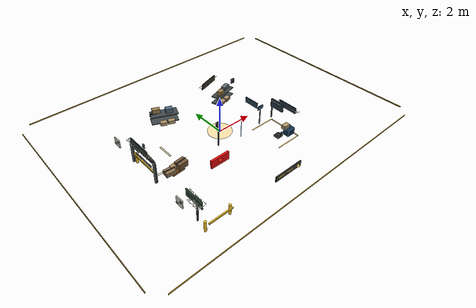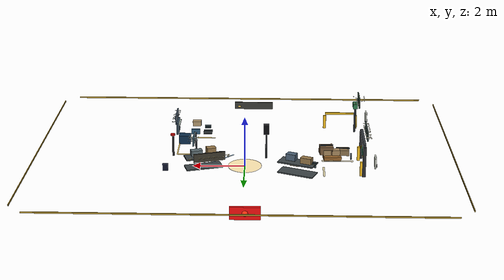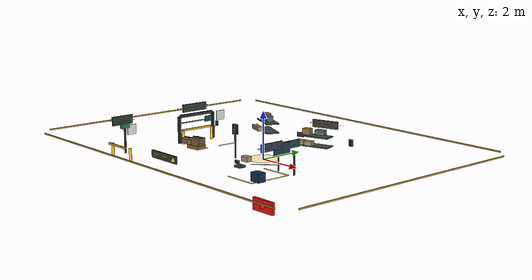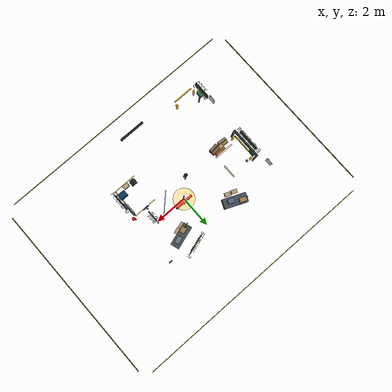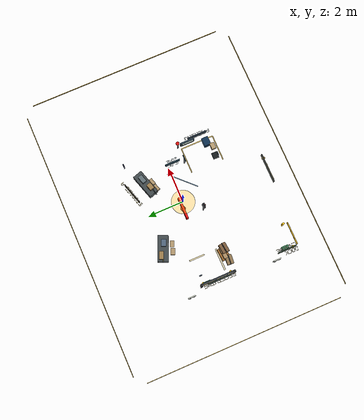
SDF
<sdf version="1.9">
 <world name="factory_patrol">
  <model name="showcase_pallets_and_totes">
   <static>true</static>
   <link name="link">
    <visual name="receiving_pallet">
     <pose>-3.42 -0.86 0.08 0 0 0.08</pose>
     <geometry><box><size>0.68 0.46 0.16</size></box></geometry>
     <material><diffuse>0.58 0.38 0.16 1</diffuse></material>
    </visual>
    <visual name="receiving_tote_1">
     <pose>-3.56 -0.86 0.30 0 0 0.08</pose>
     <geometry><box><size>0.30 0.22 0.22</size></box></geometry>
     <material><diffuse>0.64 0.52 0.36 1</diffuse></material>
    </visual>
    <visual name="receiving_tote_2">
     <pose>-3.22 -0.83 0.30 0 0 0.08</pose>
     <geometry><box><size>0.30 0.22 0.22</size></box></geometry>
     <material><diffuse>0.64 0.52 0.36 1</diffuse></material>
    </visual>
    <visual name="storage_a_tote_1">
     <pose>1.12 1.06 0.78 0 0 0.30</pose>
     <geometry><box><size>0.34 0.22 0.18</size></box></geometry>
     <material><diffuse>0.66 0.56 0.40 1</diffuse></material>
    </visual>
    <visual name="storage_a_tote_2">
     <pose>1.50 1.15 0.78 0 0 0.30</pose>
     <geometry><box><size>0.34 0.22 0.18</size></box></geometry>
     <material><diffuse>0.66 0.56 0.40 1</diffuse></material>
    </visual>
    <visual name="storage_b_tote_1">
     <pose>-2.32 1.58 0.78 0 0 -0.40</pose>
     <geometry><box><size>0.34 0.22 0.18</size></box></geometry>
     <material><diffuse>0.66 0.56 0.40 1</diffuse></material>
    </visual>
    <visual name="storage_b_tote_2">
     <pose>-1.94 1.46 0.78 0 0 -0.40</pose>
     <geometry><box><size>0.34 0.22 0.18</size></box></geometry>
     <material><diffuse>0.66 0.56 0.40 1</diffuse></material>
    </visual>
    <visual name="packing_bin">
     <pose>2.52 -2.45 0.18 0 0 0</pose>
     <geometry><box><size>0.46 0.36 0.36</size></box></geometry>
     <material><diffuse>0.05 0.18 0.30 1</diffuse></material>
    </visual>
    <visual name="packing_ready_tote">
     <pose>2.02 -2.60 0.82 0 0 0</pose>
     <geometry><box><size>0.34 0.24 0.20</size></box></geometry>
     <material><diffuse>0.68 0.58 0.42 1</diffuse></material>
    </visual>
   </link>
  </model>
  <model name="showcase_environment_polish">
   <static>true</static>
   <link name="link">
    <visual name="north_wall_safety_stripe">
     <pose>0 5.935 0.72 0 0 0</pose>
     <geometry><box><size>14.80 0.026 0.055</size></box></geometry>
     <material><diffuse>0.72 0.58 0.18 1</diffuse><emissive>0.06 0.04 0.00 1</emissive></material>
    </visual>
    <visual name="south_wall_safety_stripe">
     <pose>0 -5.935 0.72 0 0 0</pose>
     <geometry><box><size>14.80 0.026 0.055</size></box></geometry>
     <material><diffuse>0.72 0.58 0.18 1</diffuse><emissive>0.06 0.04 0.00 1</emissive></material>
    </visual>
    <visual name="east_wall_safety_stripe">
     <pose>7.935 0 0.72 0 0 0</pose>
     <geometry><box><size>0.026 10.80 0.055</size></box></geometry>
     <material><diffuse>0.72 0.58 0.18 1</diffuse><emissive>0.06 0.04 0.00 1</emissive></material>
    </visual>
    <visual name="west_wall_safety_stripe">
     <pose>-7.935 0 0.72 0 0 0</pose>
     <geometry><box><size>0.026 10.80 0.055</size></box></geometry>
     <material><diffuse>0.72 0.58 0.18 1</diffuse><emissive>0.06 0.04 0.00 1</emissive></material>
    </visual>
    <visual name="dock_charge_mast">
     <pose>-4.48 -3.78 0.62 0 0 0</pose>
     <geometry><cylinder><radius>0.045</radius><length>1.12</length></cylinder></geometry>
     <material><diffuse>0.10 0.12 0.14 1</diffuse></material>
    </visual>
    <visual name="dock_charge_panel">
     <pose>-4.48 -3.78 1.22 0 0 0</pose>
     <geometry><box><size>0.18 0.36 0.20</size></box></geometry>
     <material><diffuse>0.18 0.48 0.30 0.95</diffuse><emissive>0.00 0.08 0.02 1</emissive></material>
    </visual>
    <visual name="door_keypad">
     <pose>-4.04 0.76 0.78 0 0 0</pose>
     <geometry><box><size>0.05 0.14 0.22</size></box></geometry>
     <material><diffuse>0.02 0.06 0.10 1</diffuse><emissive>0.00 0.18 0.28 1</emissive></material>
    </visual>
    <visual name="elevator_call_panel">
     <pose>2.86 2.18 0.86 0 0 0</pose>
     <geometry><box><size>0.20 0.05 0.28</size></box></geometry>
     <material><diffuse>0.06 0.08 0.16 1</diffuse><emissive>0.18 0.12 0.42 1</emissive></material>
    </visual>
    <visual name="traffic_light_pole">
     <pose>-0.82 -0.82 0.62 0 0 0</pose>
     <geometry><cylinder><radius>0.035</radius><length>1.18</length></cylinder></geometry>
     <material><diffuse>0.08 0.09 0.10 1</diffuse></material>
    </visual>
    <visual name="traffic_light_housing">
     <pose>-0.82 -0.82 1.25 0 0 0</pose>
     <geometry><box><size>0.22 0.12 0.42</size></box></geometry>
     <material><diffuse>0.04 0.04 0.05 1</diffuse></material>
    </visual>
    <visual name="traffic_light_red">
     <pose>-0.82 -0.88 1.36 0 0 0</pose>
     <geometry><sphere><radius>0.042</radius></sphere></geometry>
     <material><diffuse>0.70 0.08 0.06 1</diffuse><emissive>0.12 0.00 0.00 1</emissive></material>
    </visual>
    <visual name="traffic_light_yellow">
     <pose>-0.82 -0.88 1.25 0 0 0</pose>
     <geometry><sphere><radius>0.042</radius></sphere></geometry>
     <material><diffuse>0.78 0.58 0.12 1</diffuse><emissive>0.10 0.06 0.00 1</emissive></material>
    </visual>
    <visual name="traffic_light_green">
     <pose>-0.82 -0.88 1.14 0 0 0</pose>
     <geometry><sphere><radius>0.042</radius></sphere></geometry>
     <material><diffuse>0.16 0.58 0.28 1</diffuse><emissive>0.00 0.08 0.02 1</emissive></material>
    </visual>
    <visual name="speed_sign_pole">
     <pose>1.95 -0.92 0.55 0 0 0</pose>
     <geometry><cylinder><radius>0.032</radius><length>1.02</length></cylinder></geometry>
     <material><diffuse>0.08 0.09 0.10 1</diffuse></material>
    </visual>
    <visual name="speed_sign_panel">
     <pose>1.95 -0.92 1.08 0 0 0</pose>
     <geometry><box><size>0.34 0.035 0.22</size></box></geometry>
     <material><diffuse>0.18 0.34 0.46 0.96</diffuse><emissive>0.00 0.04 0.06 1</emissive></material>
    </visual>
    <visual name="receiving_bollard_1">
     <pose>-4.45 -0.78 0.28 0 0 0</pose>
     <geometry><cylinder><radius>0.06</radius><length>0.56</length></cylinder></geometry>
     <material><diffuse>0.98 0.76 0.12 1</diffuse><emissive>0.18 0.10 0.00 1</emissive></material>
    </visual>
    <visual name="receiving_bollard_2">
     <pose>-4.45 0.78 0.28 0 0 0</pose>
     <geometry><cylinder><radius>0.06</radius><length>0.56</length></cylinder></geometry>
     <material><diffuse>0.98 0.76 0.12 1</diffuse><emissive>0.18 0.10 0.00 1</emissive></material>
    </visual>
    <visual name="dock_bollard_1">
     <pose>-4.55 -4.35 0.28 0 0 0</pose>
     <geometry><cylinder><radius>0.06</radius><length>0.56</length></cylinder></geometry>
     <material><diffuse>0.98 0.76 0.12 1</diffuse><emissive>0.18 0.10 0.00 1</emissive></material>
    </visual>
    <visual name="dock_bollard_2">
     <pose>-3.25 -4.35 0.28 0 0 0</pose>
     <geometry><cylinder><radius>0.06</radius><length>0.56</length></cylinder></geometry>
     <material><diffuse>0.98 0.76 0.12 1</diffuse><emissive>0.18 0.10 0.00 1</emissive></material>
    </visual>
   </link>
  </model>
  <model name="showcase_receiving_inbound_detail">
   <static>true</static>
   <link name="link">
    <visual name="receiving_rollup_header">
     <pose>-4.54 0.00 1.22 0 0 0</pose>
     <geometry><box><size>0.10 1.72 0.12</size></box></geometry>
     <material><diffuse>0.18 0.20 0.22 1</diffuse></material>
    </visual>
    <visual name="receiving_rollup_left_post">
     <pose>-4.54 -0.92 0.62 0 0 0</pose>
     <geometry><box><size>0.12 0.10 1.18</size></box></geometry>
     <material><diffuse>0.16 0.17 0.18 1</diffuse></material>
    </visual>
    <visual name="receiving_rollup_right_post">
     <pose>-4.54 0.92 0.62 0 0 0</pose>
     <geometry><box><size>0.12 0.10 1.18</size></box></geometry>
     <material><diffuse>0.16 0.17 0.18 1</diffuse></material>
    </visual>
    <visual name="receiving_door_slat_1">
     <pose>-4.60 -0.46 0.90 0 0 0</pose>
     <geometry><box><size>0.035 0.62 0.045</size></box></geometry>
     <material><diffuse>0.48 0.50 0.50 1</diffuse></material>
    </visual>
    <visual name="receiving_door_slat_2">
     <pose>-4.60 0.18 0.90 0 0 0</pose>
     <geometry><box><size>0.035 0.62 0.045</size></box></geometry>
     <material><diffuse>0.48 0.50 0.50 1</diffuse></material>
    </visual>
    <visual name="receiving_buffer_floor_lane">
     <pose>-3.62 -0.58 0.030 0 0 0</pose>
     <geometry><box><size>1.22 0.09 0.018</size></box></geometry>
     <material><diffuse>0.78 0.72 0.52 0.58</diffuse><emissive>0.08 0.06 0.00 1</emissive></material>
    </visual>
    <visual name="receiving_buffer_floor_stop">
     <pose>-3.05 0.52 0.031 0 0 1.5708</pose>
     <geometry><box><size>0.86 0.07 0.018</size></box></geometry>
     <material><diffuse>0.80 0.72 0.44 0.62</diffuse><emissive>0.08 0.06 0.00 1</emissive></material>
    </visual>
    <visual name="receiving_floor_id_panel">
     <pose>-4.47 0.62 0.96 0 0 0</pose>
     <geometry><box><size>0.045 0.38 0.24</size></box></geometry>
     <material><diffuse>0.10 0.32 0.24 0.96</diffuse><emissive>0.00 0.08 0.04 1</emissive></material>
    </visual>
    <visual name="receiving_floor_id_bar_1">
     <pose>-4.49 0.52 0.99 0 0 0</pose>
     <geometry><box><size>0.052 0.14 0.035</size></box></geometry>
     <material><diffuse>0.88 0.92 0.82 1</diffuse></material>
    </visual>
    <visual name="receiving_floor_id_bar_2">
     <pose>-4.49 0.71 0.92 0 0 0</pose>
     <geometry><box><size>0.052 0.16 0.035</size></box></geometry>
     <material><diffuse>0.88 0.92 0.82 1</diffuse></material>
    </visual>
    <visual name="inbound_pallet_stack_1">
     <pose>-3.18 -0.96 0.36 0 0 0.10</pose>
     <geometry><box><size>0.52 0.38 0.32</size></box></geometry>
     <material><diffuse>0.46 0.34 0.22 1</diffuse></material>
    </visual>
    <visual name="inbound_pallet_stack_2">
     <pose>-3.84 -0.98 0.28 0 0 -0.08</pose>
     <geometry><box><size>0.50 0.36 0.22</size></box></geometry>
     <material><diffuse>0.54 0.44 0.30 1</diffuse></material>
    </visual>
    <visual name="inbound_wrap_band_1">
     <pose>-3.18 -0.96 0.54 0 0 0.10</pose>
     <geometry><box><size>0.56 0.035 0.035</size></box></geometry>
     <material><diffuse>0.18 0.22 0.24 1</diffuse></material>
    </visual>
    <visual name="inbound_wrap_band_2">
     <pose>-3.84 -0.98 0.42 0 0 -0.08</pose>
     <geometry><box><size>0.54 0.035 0.035</size></box></geometry>
     <material><diffuse>0.18 0.22 0.24 1</diffuse></material>
    </visual>
   </link>
  </model>
  <model name="showcase_storage_industrial_detail">
   <static>true</static>
   <link name="link">
    <visual name="rack_a_upper_shelf">
     <pose>1.50 1.50 1.02 0 0 0.30</pose>
     <geometry><box><size>1.38 0.52 0.045</size></box></geometry>
     <material><diffuse>0.24 0.27 0.28 1</diffuse></material>
    </visual>
    <visual name="rack_a_mid_shelf">
     <pose>1.50 1.50 0.62 0 0 0.30</pose>
     <geometry><box><size>1.38 0.52 0.045</size></box></geometry>
     <material><diffuse>0.24 0.27 0.28 1</diffuse></material>
    </visual>
    <visual name="rack_a_load_1">
     <pose>1.22 1.33 1.20 0 0 0.30</pose>
     <geometry><box><size>0.34 0.26 0.24</size></box></geometry>
     <material><diffuse>0.58 0.46 0.28 1</diffuse></material>
    </visual>
    <visual name="rack_a_load_2">
     <pose>1.75 1.57 1.20 0 0 0.30</pose>
     <geometry><box><size>0.42 0.24 0.20</size></box></geometry>
     <material><diffuse>0.36 0.42 0.44 1</diffuse></material>
    </visual>
    <visual name="rack_a_id_plate">
     <pose>0.91 1.23 1.02 0 0 0.30</pose>
     <geometry><box><size>0.32 0.035 0.18</size></box></geometry>
     <material><diffuse>0.12 0.18 0.20 1</diffuse><emissive>0.02 0.04 0.04 1</emissive></material>
    </visual>
    <visual name="rack_a_id_mark">
     <pose>0.91 1.23 1.04 0 0 0.30</pose>
     <geometry><box><size>0.22 0.042 0.032</size></box></geometry>
     <material><diffuse>0.86 0.78 0.42 1</diffuse></material>
    </visual>
    <visual name="rack_b_upper_shelf">
     <pose>-2.00 2.00 1.02 0 0 -0.40</pose>
     <geometry><box><size>1.38 0.56 0.045</size></box></geometry>
     <material><diffuse>0.24 0.27 0.28 1</diffuse></material>
    </visual>
    <visual name="rack_b_mid_shelf">
     <pose>-2.00 2.00 0.62 0 0 -0.40</pose>
     <geometry><box><size>1.38 0.56 0.045</size></box></geometry>
     <material><diffuse>0.24 0.27 0.28 1</diffuse></material>
    </visual>
    <visual name="rack_b_load_1">
     <pose>-2.32 2.22 1.20 0 0 -0.40</pose>
     <geometry><box><size>0.40 0.24 0.22</size></box></geometry>
     <material><diffuse>0.58 0.46 0.28 1</diffuse></material>
    </visual>
    <visual name="rack_b_load_2">
     <pose>-1.78 1.86 1.20 0 0 -0.40</pose>
     <geometry><box><size>0.36 0.26 0.24</size></box></geometry>
     <material><diffuse>0.30 0.38 0.46 1</diffuse></material>
    </visual>
    <visual name="rack_b_id_plate">
     <pose>-2.52 2.22 1.02 0 0 -0.40</pose>
     <geometry><box><size>0.32 0.035 0.18</size></box></geometry>
     <material><diffuse>0.12 0.18 0.20 1</diffuse><emissive>0.02 0.04 0.04 1</emissive></material>
    </visual>
    <visual name="rack_b_id_mark">
     <pose>-2.52 2.22 1.04 0 0 -0.40</pose>
     <geometry><box><size>0.22 0.042 0.032</size></box></geometry>
     <material><diffuse>0.86 0.78 0.42 1</diffuse></material>
    </visual>
   </link>
  </model>
  <model name="showcase_packing_workcell_detail">
   <static>true</static>
   <link name="link">
    <visual name="packing_tool_board">
     <pose>2.68 -1.40 1.13 0 0 0</pose>
     <geometry><box><size>0.08 0.78 0.46</size></box></geometry>
     <material><diffuse>0.16 0.24 0.30 1</diffuse></material>
    </visual>
    <visual name="packing_tool_shadow_rail">
     <pose>2.63 -1.40 1.28 0 0 0</pose>
     <geometry><box><size>0.10 0.62 0.035</size></box></geometry>
     <material><diffuse>0.66 0.72 0.68 1</diffuse></material>
    </visual>
    <visual name="packing_scale_base">
     <pose>1.58 -2.56 0.44 0 0 0</pose>
     <geometry><box><size>0.34 0.30 0.08</size></box></geometry>
     <material><diffuse>0.08 0.10 0.11 1</diffuse></material>
    </visual>
    <visual name="packing_scale_display">
     <pose>1.58 -2.70 0.63 0 0 0</pose>
     <geometry><box><size>0.24 0.04 0.14</size></box></geometry>
     <material><diffuse>0.04 0.08 0.10 1</diffuse><emissive>0.00 0.14 0.18 1</emissive></material>
    </visual>
    <visual name="packing_safety_boundary_north">
     <pose>2.00 -1.08 0.044 0 0 0</pose>
     <geometry><box><size>1.42 0.045 0.018</size></box></geometry>
     <material><diffuse>0.86 0.68 0.18 0.76</diffuse><emissive>0.10 0.06 0.00 1</emissive></material>
    </visual>
    <visual name="packing_safety_boundary_south">
     <pose>2.00 -2.92 0.044 0 0 0</pose>
     <geometry><box><size>1.42 0.045 0.018</size></box></geometry>
     <material><diffuse>0.86 0.68 0.18 0.76</diffuse><emissive>0.10 0.06 0.00 1</emissive></material>
    </visual>
    <visual name="packing_safety_boundary_east">
     <pose>2.72 -2.00 0.044 0 0 1.5708</pose>
     <geometry><box><size>1.84 0.045 0.018</size></box></geometry>
     <material><diffuse>0.86 0.68 0.18 0.76</diffuse><emissive>0.10 0.06 0.00 1</emissive></material>
    </visual>
   </link>
  </model>
  <model name="showcase_safety_and_landmarks">
   <static>true</static>
   <link name="link">
    <visual name="guardrail_dock_rail">
     <pose>-3.90 -4.55 0.58 0 0 0</pose>
     <geometry><box><size>1.24 0.055 0.08</size></box></geometry>
     <material><diffuse>0.88 0.70 0.12 1</diffuse><emissive>0.14 0.08 0.00 1</emissive></material>
    </visual>
    <visual name="guardrail_receiving_rail">
     <pose>-4.55 0.00 0.58 0 0 1.5708</pose>
     <geometry><box><size>1.58 0.055 0.08</size></box></geometry>
     <material><diffuse>0.88 0.70 0.12 1</diffuse><emissive>0.14 0.08 0.00 1</emissive></material>
    </visual>
    <visual name="estop_post">
     <pose>2.86 -0.92 0.48 0 0 0</pose>
     <geometry><cylinder><radius>0.04</radius><length>0.86</length></cylinder></geometry>
     <material><diffuse>0.10 0.10 0.11 1</diffuse></material>
    </visual>
    <visual name="estop_button">
     <pose>2.86 -0.92 0.94 0 0 0</pose>
     <geometry><cylinder><radius>0.095</radius><length>0.05</length></cylinder></geometry>
     <material><diffuse>0.80 0.05 0.04 1</diffuse><emissive>0.18 0.00 0.00 1</emissive></material>
    </visual>
    <visual name="slow_zone_hash_1">
     <pose>0.72 -0.82 0.050 0 0 0.7854</pose>
     <geometry><box><size>0.72 0.035 0.018</size></box></geometry>
     <material><diffuse>0.18 0.48 0.72 0.58</diffuse></material>
    </visual>
    <visual name="slow_zone_hash_2">
     <pose>1.10 -0.44 0.050 0 0 0.7854</pose>
     <geometry><box><size>0.72 0.035 0.018</size></box></geometry>
     <material><diffuse>0.18 0.48 0.72 0.58</diffuse></material>
    </visual>
    <visual name="slow_zone_hash_3">
     <pose>1.48 -0.06 0.050 0 0 0.7854</pose>
     <geometry><box><size>0.72 0.035 0.018</size></box></geometry>
     <material><diffuse>0.18 0.48 0.72 0.58</diffuse></material>
    </visual>
    <visual name="landmark_receiving_plate">
     <pose>-4.88 1.62 0.92 0 0 0</pose>
     <geometry><box><size>0.045 0.42 0.42</size></box></geometry>
     <material><diffuse>0.90 0.92 0.86 1</diffuse></material>
    </visual>
    <visual name="landmark_receiving_black_1">
     <pose>-4.91 1.50 1.02 0 0 0</pose>
     <geometry><box><size>0.050 0.10 0.10</size></box></geometry>
     <material><diffuse>0.04 0.04 0.04 1</diffuse></material>
    </visual>
    <visual name="landmark_receiving_black_2">
     <pose>-4.91 1.75 0.82 0 0 0</pose>
     <geometry><box><size>0.050 0.10 0.10</size></box></geometry>
     <material><diffuse>0.04 0.04 0.04 1</diffuse></material>
    </visual>
    <visual name="landmark_dock_plate">
     <pose>-4.88 -3.18 0.92 0 0 0</pose>
     <geometry><box><size>0.045 0.42 0.42</size></box></geometry>
     <material><diffuse>0.90 0.92 0.86 1</diffuse></material>
    </visual>
    <visual name="landmark_dock_black_1">
     <pose>-4.91 -3.30 1.02 0 0 0</pose>
     <geometry><box><size>0.050 0.10 0.10</size></box></geometry>
     <material><diffuse>0.04 0.04 0.04 1</diffuse></material>
    </visual>
    <visual name="landmark_dock_black_2">
     <pose>-4.91 -3.05 0.82 0 0 0</pose>
     <geometry><box><size>0.050 0.10 0.10</size></box></geometry>
     <material><diffuse>0.04 0.04 0.04 1</diffuse></material>
    </visual>
   </link>
  </model>
  <model name="showcase_static_station_signs">
   <static>true</static>
   <link name="link">
    <visual name="sign_receiving_board">
     <pose>-4.66 0.00 1.52 0 0 0</pose>
     <geometry><box><size>0.045 1.28 0.34</size></box></geometry>
     <material><diffuse>0.18 0.24 0.22 0.96</diffuse><ambient>0.18 0.24 0.22 0.96</ambient></material>
    </visual>
    <visual name="sign_receiving_text">
     <pose>-4.69 0.00 1.52 0 0 1.5708</pose>
     <geometry>
      <mesh><uri>../media/text_meshes/label_receiving.obj</uri><scale>1.28 1.28 1</scale></mesh>
     </geometry>
     <material>
      <ambient>0.92 0.90 0.78 1</ambient>
      <diffuse>0.92 0.90 0.78 1</diffuse>
      <double_sided>true</double_sided>
     </material>
    </visual>
    <visual name="sign_dock_board">
     <pose>-4.62 -3.80 1.44 0 0 0</pose>
     <geometry><box><size>0.045 1.00 0.38</size></box></geometry>
     <material><diffuse>0.16 0.24 0.18 0.96</diffuse><ambient>0.16 0.24 0.18 0.96</ambient></material>
    </visual>
    <visual name="sign_dock_text">
     <pose>-4.65 -3.80 1.44 0 0 1.5708</pose>
     <geometry><mesh><uri>../media/text_meshes/label_dock.obj</uri><scale>1.35 1.35 1</scale></mesh></geometry>
     <material>
      <ambient>0.92 0.90 0.78 1</ambient>
      <diffuse>0.92 0.90 0.78 1</diffuse>
      <double_sided>true</double_sided>
     </material>
    </visual>
    <visual name="sign_storage_a_board">
     <pose>1.22 2.35 1.34 0 0 0.30</pose>
     <geometry><box><size>1.18 0.045 0.32</size></box></geometry>
     <material><diffuse>0.24 0.22 0.18 0.96</diffuse><ambient>0.24 0.22 0.18 0.96</ambient></material>
    </visual>
    <visual name="sign_storage_a_text">
     <pose>1.22 2.38 1.34 0 0 0.30</pose>
     <geometry>
      <mesh><uri>../media/text_meshes/label_storage_a.obj</uri><scale>1.12 1.12 1</scale></mesh>
     </geometry>
     <material>
      <ambient>0.92 0.86 0.62 1</ambient>
      <diffuse>0.92 0.86 0.62 1</diffuse>
      <double_sided>true</double_sided>
     </material>
    </visual>
    <visual name="sign_packing_board">
     <pose>2.78 -2.00 1.32 0 0 0</pose>
     <geometry><box><size>0.045 1.05 0.32</size></box></geometry>
     <material><diffuse>0.18 0.24 0.30 0.96</diffuse><ambient>0.18 0.24 0.30 0.96</ambient></material>
    </visual>
    <visual name="sign_packing_text">
     <pose>2.81 -2.00 1.32 0 0 1.5708</pose>
     <geometry><mesh><uri>../media/text_meshes/label_packing.obj</uri><scale>1.20 1.20 1</scale></mesh></geometry>
     <material>
      <ambient>0.84 0.88 0.86 1</ambient>
      <diffuse>0.84 0.88 0.86 1</diffuse>
      <double_sided>true</double_sided>
     </material>
    </visual>
    <visual name="sign_slow_zone_board">
     <pose>1.98 -0.25 1.02 0 0 0</pose>
     <geometry><box><size>0.045 0.82 0.30</size></box></geometry>
     <material><diffuse>0.16 0.28 0.34 0.94</diffuse><ambient>0.16 0.28 0.34 0.94</ambient></material>
    </visual>
    <visual name="sign_slow_zone_text">
     <pose>2.01 -0.25 1.02 0 0 1.5708</pose>
     <geometry>
      <mesh><uri>../media/text_meshes/label_slow_zone.obj</uri><scale>1.12 1.12 1</scale></mesh>
     </geometry>
     <material>
      <ambient>0.78 0.86 0.88 1</ambient>
      <diffuse>0.78 0.86 0.88 1</diffuse>
      <double_sided>true</double_sided>
     </material>
    </visual>
    <visual name="sign_route_board">
     <pose>-0.25 -4.78 0.82 0 0 0</pose>
     <geometry><box><size>1.60 0.045 0.30</size></box></geometry>
     <material><diffuse>0.22 0.23 0.21 0.96</diffuse><ambient>0.22 0.23 0.21 0.96</ambient></material>
    </visual>
    <visual name="sign_route_mark_1">
     <pose>-0.72 -4.81 0.84 0 0 0</pose>
     <geometry><box><size>0.38 0.052 0.045</size></box></geometry>
     <material><diffuse>0.82 0.68 0.30 1</diffuse></material>
    </visual>
    <visual name="sign_route_mark_2">
     <pose>-0.18 -4.81 0.84 0 0 0</pose>
     <geometry><box><size>0.38 0.052 0.045</size></box></geometry>
     <material><diffuse>0.82 0.68 0.30 1</diffuse></material>
    </visual>
    <visual name="sign_route_arrow">
     <pose>0.36 -4.81 0.84 0 0 1.5708</pose>
     <geometry><cone><radius>0.09</radius><length>0.16</length></cone></geometry>
     <material><diffuse>0.82 0.68 0.30 1</diffuse></material>
    </visual>
   </link>
  </model>
  <model name="traffic_intersection_zone">
   <static>true</static>
   <pose>0 0 0.03 0 0 0</pose>
   <link name="link">
    <visual name="visual">
     <geometry><cylinder><radius>0.65</radius><length>0.03</length></cylinder></geometry>
     <material><diffuse>1.0 0.72 0.1 0.35</diffuse></material>
    </visual>
   </link>
  </model>
  <model name="traffic_route_block_barrier">
   <static>false</static>
   <pose>0 0 -2 0 0 0</pose>
   <link name="link">
    <gravity>false</gravity>
    <visual name="barrier_visual">
     <geometry><box><size>1.25 0.12 0.55</size></box></geometry>
     <material><diffuse>0.95 0.05 0.05 0.9</diffuse><emissive>0.35 0.0 0.0 1</emissive></material>
    </visual>
   </link>
  </model>
  <model name="traffic_deadlock_warning_beacon">
   <static>false</static>
   <pose>0 0 -2 0 0 0</pose>
   <link name="link">
    <gravity>false</gravity>
    <visual name="warning_visual">
     <geometry><sphere><radius>0.14</radius></sphere></geometry>
     <material><diffuse>1.0 0.18 0.05 0.95</diffuse><emissive>0.75 0.04 0.0 1</emissive></material>
    </visual>
   </link>
  </model>
 </world>
</sdf>
